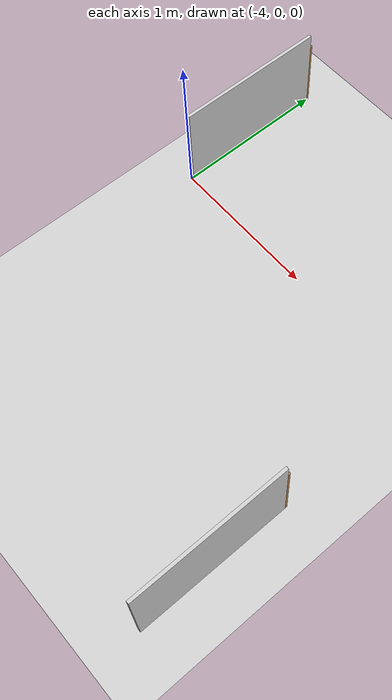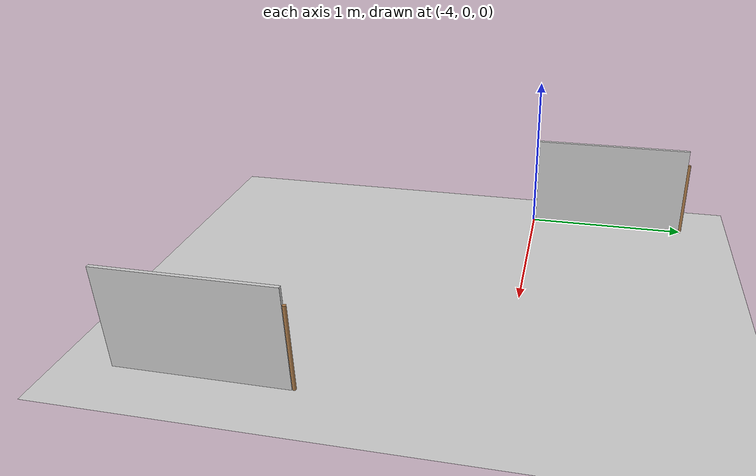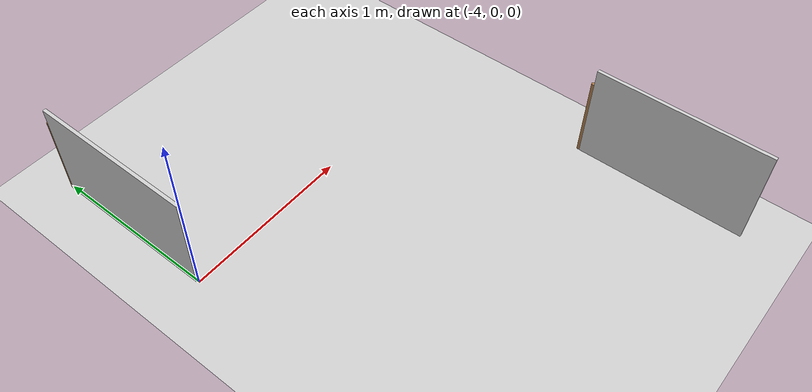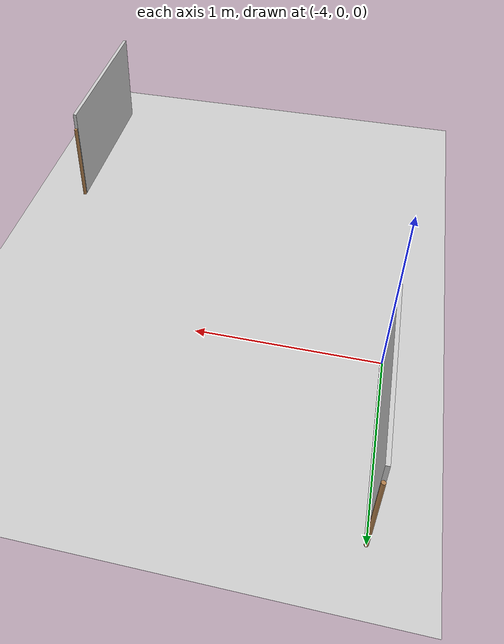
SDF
<sdf version="1.7">
 <world name="default">
  <model name="ground_plane">
   <static>true</static>
   <link name="link">
    <collision name="collision">
     <geometry><plane><normal>0 0 1</normal><size>1 1</size></plane></geometry>
    </collision>
    <visual name="visual">
     <geometry><plane><normal>0 0 1</normal><size>100 100</size></plane></geometry>
     <material>
      <ambient>0.8 0.8 0.8 1</ambient>
      <diffuse>0.8 0.8 0.8 1</diffuse>
      <specular>0.8 0.8 0.8 1</specular>
     </material>
    </visual>
    <inertial>
     <mass>1</mass>
     <inertia><ixx>1</ixx><ixy>0</ixy><ixz>0</ixz><iyy>1</iyy><iyz>0</iyz><izz>1</izz></inertia>
    </inertial>
   </link>
  </model>
  <model name="maze_1_6x5_clone_clone">
   <frame name="plywood_panel_0_0_b::__model__" attached_to="plywood_panel_0_0_b::main">
    <pose relative_to="__model__">0 0 0 0 -0 1.571</pose>
   </frame>
   <static>true</static>
   <link name="plywood_panel_0_0_b::main">
    <pose relative_to="plywood_panel_0_0_b::__model__">0 0 0 0 -0 0</pose>
    <collision name="collision">
     <pose>0 -0.5 0.3 -1.571 -0 -1.571</pose>
     <geometry><box><size>0.98 0.6 0.02</size></box></geometry>
    </collision>
    <visual name="visual">
     <pose>0.01 -0.01 0 3.14159 -1.57059 3.14159</pose>
     <geometry>
      <mesh>
       <scale>1 1 1</scale>
       <uri>/home/mayank/cognipilot/cranium/src/dream_world/models/plywood_panel/meshes/plywood.dae</uri>
      </mesh>
     </geometry>
    </visual>
   </link>
   <frame name="wooden_joint_0_0_b::__model__" attached_to="wooden_joint_0_0_b::link_0">
    <pose relative_to="__model__">0 0 0 0 -0 0</pose>
   </frame>
   <link name="wooden_joint_0_0_b::link_0">
    <pose relative_to="wooden_joint_0_0_b::__model__">0 0 0.25 0 -0 0</pose>
    <inertial>
     <mass>0.00215981</mass>
     <inertia>
      <ixx>0.00018028</ixx>
      <ixy>0</ixy>
      <ixz>0</ixz>
      <iyy>0.00018028</iyy>
      <iyz>0</iyz>
      <izz>5.8e-07</izz>
     </inertia>
    </inertial>
    <visual name="visual">
     <geometry><cylinder><radius>0.01</radius><length>0.5</length></cylinder></geometry>
     <material>
      <lighting>1</lighting>
      <script><uri>file://media/materials/scripts/gazebo.material</uri><name>Gazebo/Wood</name></script>
      <shader type="pixel"><normal_map>__default__</normal_map></shader>
      <ambient>0.3 0.3 0.3 1</ambient>
      <diffuse>0.7 0.7 0.7 1</diffuse>
      <specular>0.01 0.01 0.01 1</specular>
      <emissive>0 0 0 1</emissive>
     </material>
    </visual>
    <collision name="collision">
     <geometry><cylinder><radius>0.01</radius><length>0.5</length></cylinder></geometry>
     <surface>
      <friction>
       <ode><mu>1</mu><mu2>1</mu2><fdir1>0 0 0</fdir1><slip1>0</slip1><slip2>0</slip2></ode>
       <torsional>
        <coefficient>1</coefficient>
        <patch_radius>0</patch_radius>
        <surface_radius>0</surface_radius>
        <use_patch_radius>1</use_patch_radius>
        <ode><slip>0</slip></ode>
       </torsional>
      </friction>
      <bounce><restitution_coefficient>0</restitution_coefficient><threshold>1e+06</threshold></bounce>
      <contact>
       <collide_without_contact>0</collide_without_contact>
       <collide_without_contact_bitmask>1</collide_without_contact_bitmask>
       <collide_bitmask>1</collide_bitmask>
       <ode>
        <soft_cfm>0</soft_cfm>
        <soft_erp>0.2</soft_erp>
        <kp>1e+13</kp>
        <kd>1</kd>
        <max_vel>0.01</max_vel>
        <min_depth>0</min_depth>
       </ode>
       <bullet>
        <split_impulse>1</split_impulse>
        <split_impulse_penetration_threshold>-0.01</split_impulse_penetration_threshold>
        <soft_cfm>0</soft_cfm>
        <soft_erp>0.2</soft_erp>
        <kp>1e+13</kp>
        <kd>1</kd>
       </bullet>
      </contact>
     </surface>
    </collision>
   </link>
   <static>true</static>
   <pose>-2 -1 0 0 0 -1.5708</pose>
  </model>
  <model name="maze_1_6x5_clone_clone_6">
   <frame name="plywood_panel_0_0_b::__model__" attached_to="plywood_panel_0_0_b::main">
    <pose relative_to="__model__">0 0 0 0 -0 1.571</pose>
   </frame>
   <static>true</static>
   <link name="plywood_panel_0_0_b::main">
    <pose relative_to="plywood_panel_0_0_b::__model__">0 0 0 0 -0 0</pose>
    <collision name="collision">
     <pose>0 -0.5 0.3 -1.571 -0 -1.571</pose>
     <geometry><box><size>0.98 0.6 0.02</size></box></geometry>
    </collision>
    <visual name="visual">
     <pose>0.01 -0.01 0 3.14159 -1.57059 3.14159</pose>
     <geometry>
      <mesh>
       <scale>1 1 1</scale>
       <uri>/home/mayank/cognipilot/cranium/src/dream_world/models/plywood_panel/meshes/plywood.dae</uri>
      </mesh>
     </geometry>
    </visual>
   </link>
   <frame name="wooden_joint_0_0_b::__model__" attached_to="wooden_joint_0_0_b::link_0">
    <pose relative_to="__model__">0 0 0 0 -0 0</pose>
   </frame>
   <link name="wooden_joint_0_0_b::link_0">
    <pose relative_to="wooden_joint_0_0_b::__model__">0 0 0.25 0 -0 0</pose>
    <inertial>
     <mass>0.00215981</mass>
     <inertia>
      <ixx>0.00018028</ixx>
      <ixy>0</ixy>
      <ixz>0</ixz>
      <iyy>0.00018028</iyy>
      <iyz>0</iyz>
      <izz>5.8e-07</izz>
     </inertia>
    </inertial>
    <visual name="visual">
     <geometry><cylinder><radius>0.01</radius><length>0.5</length></cylinder></geometry>
     <material>
      <lighting>1</lighting>
      <script><uri>file://media/materials/scripts/gazebo.material</uri><name>Gazebo/Wood</name></script>
      <shader type="pixel"><normal_map>__default__</normal_map></shader>
      <ambient>0.3 0.3 0.3 1</ambient>
      <diffuse>0.7 0.7 0.7 1</diffuse>
      <specular>0.01 0.01 0.01 1</specular>
      <emissive>0 0 0 1</emissive>
     </material>
    </visual>
    <collision name="collision">
     <geometry><cylinder><radius>0.01</radius><length>0.5</length></cylinder></geometry>
     <surface>
      <friction>
       <ode><mu>1</mu><mu2>1</mu2><fdir1>0 0 0</fdir1><slip1>0</slip1><slip2>0</slip2></ode>
       <torsional>
        <coefficient>1</coefficient>
        <patch_radius>0</patch_radius>
        <surface_radius>0</surface_radius>
        <use_patch_radius>1</use_patch_radius>
        <ode><slip>0</slip></ode>
       </torsional>
      </friction>
      <bounce><restitution_coefficient>0</restitution_coefficient><threshold>1e+06</threshold></bounce>
      <contact>
       <collide_without_contact>0</collide_without_contact>
       <collide_without_contact_bitmask>1</collide_without_contact_bitmask>
       <collide_bitmask>1</collide_bitmask>
       <ode>
        <soft_cfm>0</soft_cfm>
        <soft_erp>0.2</soft_erp>
        <kp>1e+13</kp>
        <kd>1</kd>
        <max_vel>0.01</max_vel>
        <min_depth>0</min_depth>
       </ode>
       <bullet>
        <split_impulse>1</split_impulse>
        <split_impulse_penetration_threshold>-0.01</split_impulse_penetration_threshold>
        <soft_cfm>0</soft_cfm>
        <soft_erp>0.2</soft_erp>
        <kp>1e+13</kp>
        <kd>1</kd>
       </bullet>
      </contact>
     </surface>
    </collision>
   </link>
   <static>true</static>
   <pose>-4 1 0 0 0 -1.5708</pose>
  </model>
 </world>
</sdf>
